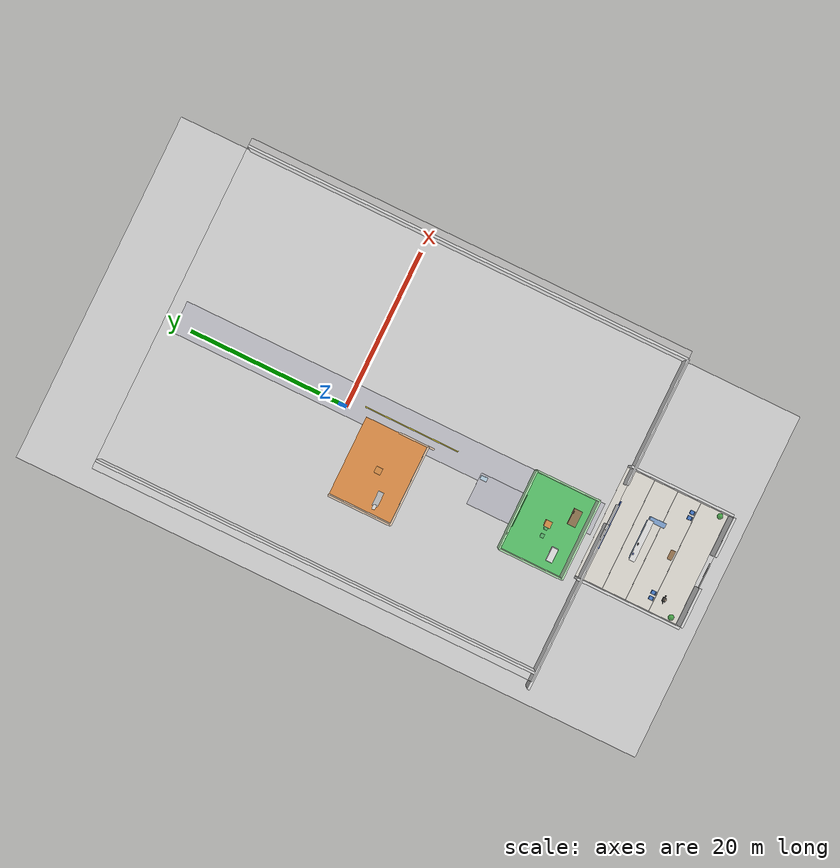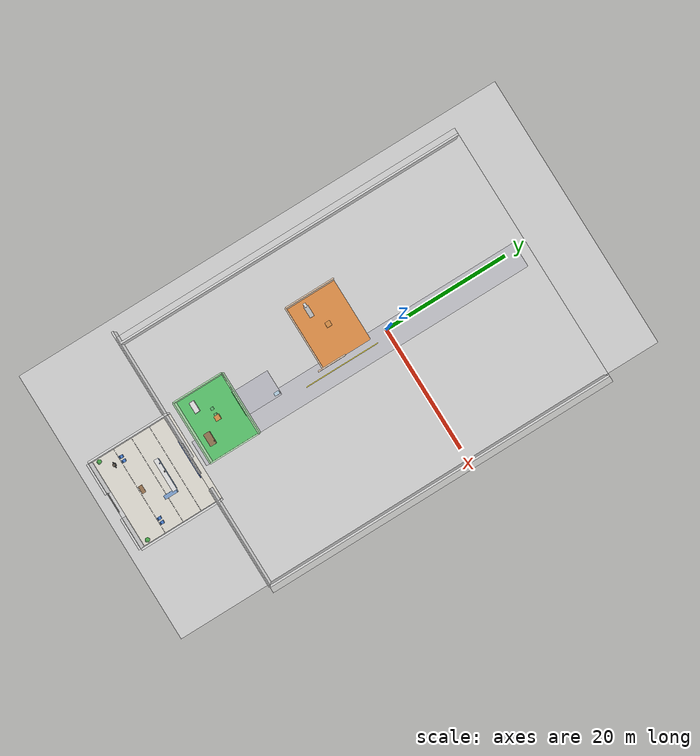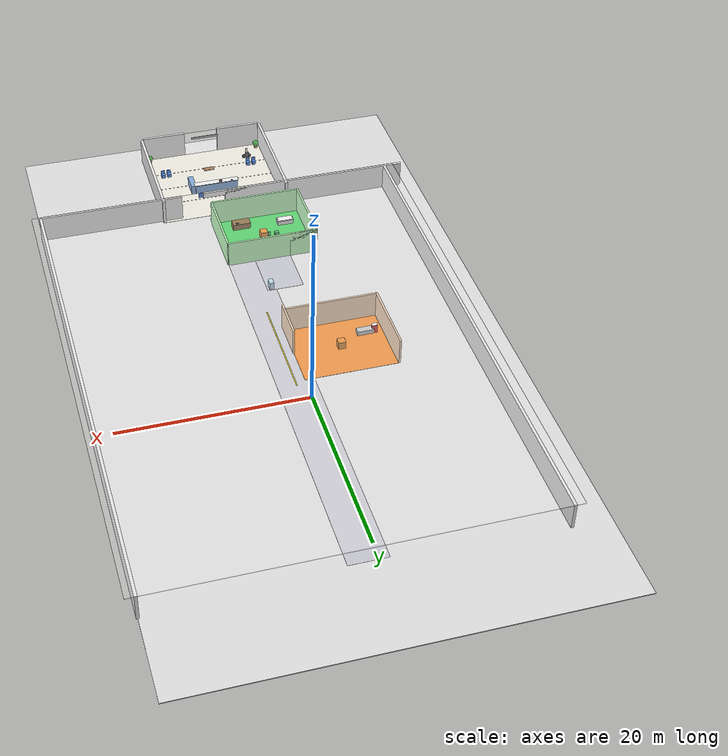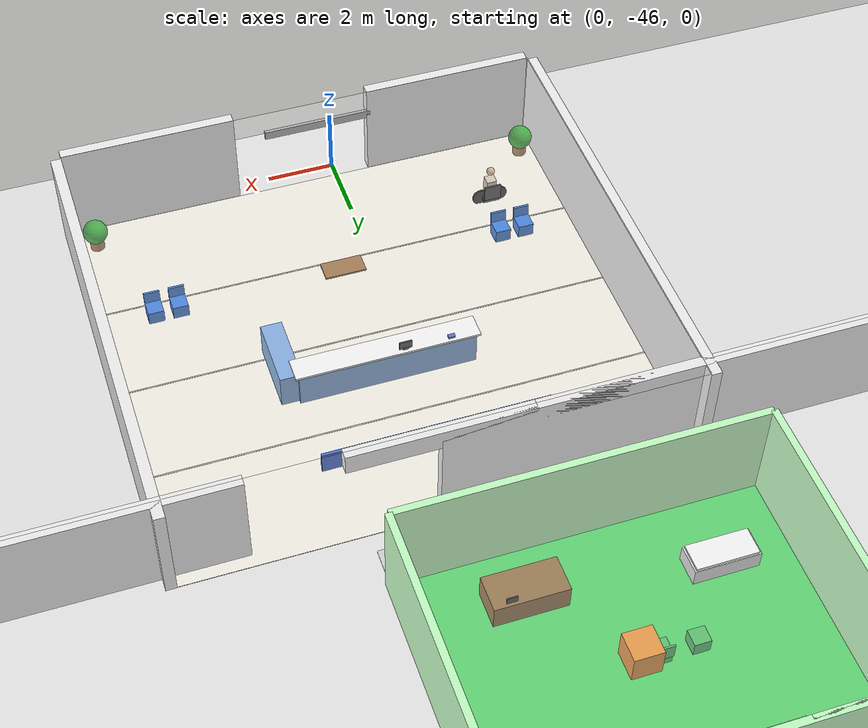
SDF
<sdf version="1.6">
 <world name="hospital">
  <model name="hospital_floor">
   <static>true</static>
   <pose>0 -8 0 0 0 0</pose>
   <link name="floor_link">
    <collision name="col"><geometry><box><size>44 80 0.1</size></box></geometry></collision>
    <visual name="vis">
     <geometry><box><size>44 80 0.1</size></box></geometry>
     <material><ambient>0.88 0.88 0.88 1</ambient><diffuse>0.88 0.88 0.88 1</diffuse></material>
    </visual>
   </link>
  </model>
  <model name="wall_south_west">
   <static>true</static>
   <pose>-9.5 -33 1.5 0 0 0</pose>
   <link name="link">
    <collision name="col"><geometry><box><size>21 0.3 3.0</size></box></geometry></collision>
    <visual name="vis">
     <geometry><box><size>21 0.3 3.0</size></box></geometry>
     <material><ambient>0.92 0.92 0.92 1</ambient><diffuse>0.92 0.92 0.92 1</diffuse></material>
    </visual>
   </link>
  </model>
  <model name="wall_south_east">
   <static>true</static>
   <pose>14.0 -33 1.5 0 0 0</pose>
   <link name="link">
    <collision name="col"><geometry><box><size>16 0.3 3.0</size></box></geometry></collision>
    <visual name="vis">
     <geometry><box><size>16 0.3 3.0</size></box></geometry>
     <material><ambient>0.92 0.92 0.92 1</ambient><diffuse>0.92 0.92 0.92 1</diffuse></material>
    </visual>
   </link>
  </model>
  <model name="wall_south_linteau">
   <static>true</static>
   <pose>1.0 -33 2.7 0 0 0</pose>
   <link name="link">
    <visual name="vis">
     <geometry><box><size>5 0.3 0.6</size></box></geometry>
     <material><ambient>0.92 0.92 0.92 1</ambient><diffuse>0.92 0.92 0.92 1</diffuse></material>
    </visual>
   </link>
  </model>
  <model name="wall_east">
   <static>true</static>
   <pose>22 -5 1.5 0 0 0</pose>
   <link name="link">
    <collision name="col"><geometry><box><size>0.3 56 3.0</size></box></geometry></collision>
    <visual name="vis">
     <geometry><box><size>0.3 56 3.0</size></box></geometry>
     <material><ambient>0.92 0.92 0.92 1</ambient><diffuse>0.92 0.92 0.92 1</diffuse></material>
    </visual>
   </link>
  </model>
  <model name="wall_west">
   <static>true</static>
   <pose>-18 -5 1.5 0 0 0</pose>
   <link name="link">
    <collision name="col"><geometry><box><size>0.3 56 3.0</size></box></geometry></collision>
    <visual name="vis">
     <geometry><box><size>0.3 56 3.0</size></box></geometry>
     <material><ambient>0.92 0.92 0.92 1</ambient><diffuse>0.92 0.92 0.92 1</diffuse></material>
    </visual>
   </link>
  </model>
  <model name="entrance_floor">
   <static>true</static>
   <pose>1.0 -39.0 0.07 0 0 0</pose>
   <link name="link">
    <collision name="col"><geometry><box><size>14 13 0.02</size></box></geometry></collision>
    <visual name="vis">
     <geometry><box><size>14 13 0.02</size></box></geometry>
     <material><ambient>0.95 0.93 0.88 1</ambient><diffuse>0.95 0.93 0.88 1</diffuse></material>
    </visual>
   </link>
  </model>
  <model name="entrance_tile_h1">
   <static>true</static>
   <pose>1.0 -36 0.08 0 0 0</pose>
   <link name="link">
    <visual name="vis">
     <geometry><box><size>14 0.04 0.01</size></box></geometry>
     <material><ambient>0.7 0.7 0.7 1</ambient><diffuse>0.7 0.7 0.7 1</diffuse></material>
    </visual>
   </link>
  </model>
  <model name="entrance_tile_h2">
   <static>true</static>
   <pose>1.0 -39 0.08 0 0 0</pose>
   <link name="link">
    <visual name="vis">
     <geometry><box><size>14 0.04 0.01</size></box></geometry>
     <material><ambient>0.7 0.7 0.7 1</ambient><diffuse>0.7 0.7 0.7 1</diffuse></material>
    </visual>
   </link>
  </model>
  <model name="entrance_tile_h3">
   <static>true</static>
   <pose>1.0 -42 0.08 0 0 0</pose>
   <link name="link">
    <visual name="vis">
     <geometry><box><size>14 0.04 0.01</size></box></geometry>
     <material><ambient>0.7 0.7 0.7 1</ambient><diffuse>0.7 0.7 0.7 1</diffuse></material>
    </visual>
   </link>
  </model>
  <model name="entrance_wall_east">
   <static>true</static>
   <pose>8.15 -39 1.5 0 0 0</pose>
   <link name="link">
    <collision name="col"><geometry><box><size>0.3 13 3.0</size></box></geometry></collision>
    <visual name="vis">
     <geometry><box><size>0.3 13 3.0</size></box></geometry>
     <material><ambient>0.92 0.92 0.92 1</ambient><diffuse>0.92 0.92 0.92 1</diffuse></material>
    </visual>
   </link>
  </model>
  <model name="entrance_wall_west">
   <static>true</static>
   <pose>-6.15 -39 1.5 0 0 0</pose>
   <link name="link">
    <collision name="col"><geometry><box><size>0.3 13 3.0</size></box></geometry></collision>
    <visual name="vis">
     <geometry><box><size>0.3 13 3.0</size></box></geometry>
     <material><ambient>0.92 0.92 0.92 1</ambient><diffuse>0.92 0.92 0.92 1</diffuse></material>
    </visual>
   </link>
  </model>
  <model name="entrance_wall_south_left">
   <static>true</static>
   <pose>-3.5 -45.7 1.5 0 0 0</pose>
   <link name="link">
    <collision name="col"><geometry><box><size>5 0.3 3.0</size></box></geometry></collision>
    <visual name="vis">
     <geometry><box><size>5 0.3 3.0</size></box></geometry>
     <material><ambient>0.92 0.92 0.92 1</ambient><diffuse>0.92 0.92 0.92 1</diffuse></material>
    </visual>
   </link>
  </model>
  <model name="entrance_wall_south_right">
   <static>true</static>
   <pose>5.5 -45.7 1.5 0 0 0</pose>
   <link name="link">
    <collision name="col"><geometry><box><size>5 0.3 3.0</size></box></geometry></collision>
    <visual name="vis">
     <geometry><box><size>5 0.3 3.0</size></box></geometry>
     <material><ambient>0.92 0.92 0.92 1</ambient><diffuse>0.92 0.92 0.92 1</diffuse></material>
    </visual>
   </link>
  </model>
  <model name="door_left">
   <static>true</static>
   <pose>-0.7 -45.6 1.0 0 0 0</pose>
   <link name="link">
    <visual name="vis">
     <geometry><box><size>1.1 0.06 2.0</size></box></geometry>
     <material><ambient>0.5 0.7 1.0 0.4</ambient><diffuse>0.5 0.7 1.0 0.4</diffuse></material>
    </visual>
   </link>
  </model>
  <model name="door_right">
   <static>true</static>
   <pose>1.7 -45.6 1.0 0 0 0</pose>
   <link name="link">
    <visual name="vis">
     <geometry><box><size>1.1 0.06 2.0</size></box></geometry>
     <material><ambient>0.5 0.7 1.0 0.4</ambient><diffuse>0.5 0.7 1.0 0.4</diffuse></material>
    </visual>
   </link>
  </model>
  <model name="door_frame_top">
   <static>true</static>
   <pose>0.5 -45.6 2.15 0 0 0</pose>
   <link name="link">
    <visual name="vis">
     <geometry><box><size>3.2 0.1 0.25</size></box></geometry>
     <material><ambient>0.6 0.6 0.6 1</ambient><diffuse>0.6 0.6 0.6 1</diffuse></material>
    </visual>
   </link>
  </model>
  <model name="reception_desk_front">
   <static>true</static>
   <pose>1.0 -37.5 0.55 0 0 0</pose>
   <link name="link">
    <collision name="col"><geometry><box><size>5.0 0.6 1.1</size></box></geometry></collision>
    <visual name="vis">
     <geometry><box><size>5.0 0.6 1.1</size></box></geometry>
     <material><ambient>0.4 0.6 0.85 1</ambient><diffuse>0.4 0.6 0.85 1</diffuse></material>
    </visual>
   </link>
  </model>
  <model name="reception_desk_right">
   <static>true</static>
   <pose>3.7 -38.3 0.55 0 0 0</pose>
   <link name="link">
    <collision name="col"><geometry><box><size>0.6 2.0 1.1</size></box></geometry></collision>
    <visual name="vis">
     <geometry><box><size>0.6 2.0 1.1</size></box></geometry>
     <material><ambient>0.4 0.6 0.85 1</ambient><diffuse>0.4 0.6 0.85 1</diffuse></material>
    </visual>
   </link>
  </model>
  <model name="reception_top">
   <static>true</static>
   <pose>1.0 -37.5 1.12 0 0 0</pose>
   <link name="link">
    <visual name="vis">
     <geometry><box><size>5.2 0.7 0.06</size></box></geometry>
     <material><ambient>0.97 0.97 0.97 1</ambient><diffuse>0.97 0.97 0.97 1</diffuse></material>
    </visual>
   </link>
  </model>
  <model name="reception_pc_screen">
   <static>true</static>
   <pose>0.5 -37.3 1.28 0 0 0</pose>
   <link name="link">
    <visual name="vis">
     <geometry><box><size>0.35 0.04 0.25</size></box></geometry>
     <material><ambient>0.15 0.15 0.15 1</ambient><diffuse>0.15 0.15 0.15 1</diffuse></material>
    </visual>
   </link>
  </model>
  <model name="reception_pc_base">
   <static>true</static>
   <pose>0.5 -37.32 1.17 0 0 0</pose>
   <link name="link">
    <visual name="vis">
     <geometry><box><size>0.15 0.15 0.1</size></box></geometry>
     <material><ambient>0.2 0.2 0.2 1</ambient><diffuse>0.2 0.2 0.2 1</diffuse></material>
    </visual>
   </link>
  </model>
  <model name="reception_phone">
   <static>true</static>
   <pose>-0.8 -37.3 1.18 0 0 0</pose>
   <link name="link">
    <visual name="vis">
     <geometry><box><size>0.2 0.12 0.05</size></box></geometry>
     <material><ambient>0.2 0.3 0.7 1</ambient><diffuse>0.2 0.3 0.7 1</diffuse></material>
    </visual>
   </link>
  </model>
  <model name="sign_hospital_main">
   <static>true</static>
   <pose>1.0 -33.2 2.6 0 0 0</pose>
   <link name="link">
    <visual name="vis">
     <geometry><box><size>6.0 0.08 0.6</size></box></geometry>
     <material><ambient>0.1 0.3 0.8 1</ambient><diffuse>0.1 0.3 0.8 1</diffuse></material>
    </visual>
   </link>
  </model>
  <model name="sign_red_cross_h">
   <static>true</static>
   <pose>1.0 -33.13 2.6 0 0 0</pose>
   <link name="link">
    <visual name="vis">
     <geometry><box><size>0.4 0.06 0.12</size></box></geometry>
     <material><ambient>1 0 0 1</ambient><diffuse>1 0 0 1</diffuse></material>
    </visual>
   </link>
  </model>
  <model name="sign_red_cross_v">
   <static>true</static>
   <pose>1.0 -33.13 2.6 0 0 0</pose>
   <link name="link">
    <visual name="vis">
     <geometry><box><size>0.12 0.06 0.4</size></box></geometry>
     <material><ambient>1 0 0 1</ambient><diffuse>1 0 0 1</diffuse></material>
    </visual>
   </link>
  </model>
  <model name="waiting_chair_1">
   <static>true</static>
   <pose>-4.5 -41.5 0.25 0 0 0</pose>
   <link name="link">
    <collision name="col"><geometry><box><size>0.45 0.45 0.45</size></box></geometry></collision>
    <visual name="vis">
     <geometry><box><size>0.45 0.45 0.45</size></box></geometry>
     <material><ambient>0.1 0.4 0.85 1</ambient><diffuse>0.1 0.4 0.85 1</diffuse></material>
    </visual>
   </link>
  </model>
  <model name="waiting_chair_back_1">
   <static>true</static>
   <pose>-4.5 -41.75 0.6 0 0 0</pose>
   <link name="link">
    <visual name="vis">
     <geometry><box><size>0.45 0.06 0.45</size></box></geometry>
     <material><ambient>0.1 0.4 0.85 1</ambient><diffuse>0.1 0.4 0.85 1</diffuse></material>
    </visual>
   </link>
  </model>
  <model name="waiting_chair_2">
   <static>true</static>
   <pose>-3.8 -41.5 0.25 0 0 0</pose>
   <link name="link">
    <collision name="col"><geometry><box><size>0.45 0.45 0.45</size></box></geometry></collision>
    <visual name="vis">
     <geometry><box><size>0.45 0.45 0.45</size></box></geometry>
     <material><ambient>0.1 0.4 0.85 1</ambient><diffuse>0.1 0.4 0.85 1</diffuse></material>
    </visual>
   </link>
  </model>
  <model name="waiting_chair_back_2">
   <static>true</static>
   <pose>-3.8 -41.75 0.6 0 0 0</pose>
   <link name="link">
    <visual name="vis">
     <geometry><box><size>0.45 0.06 0.45</size></box></geometry>
     <material><ambient>0.1 0.4 0.85 1</ambient><diffuse>0.1 0.4 0.85 1</diffuse></material>
    </visual>
   </link>
  </model>
  <model name="waiting_chair_3">
   <static>true</static>
   <pose>5.8 -41.5 0.25 0 0 0</pose>
   <link name="link">
    <collision name="col"><geometry><box><size>0.45 0.45 0.45</size></box></geometry></collision>
    <visual name="vis">
     <geometry><box><size>0.45 0.45 0.45</size></box></geometry>
     <material><ambient>0.1 0.4 0.85 1</ambient><diffuse>0.1 0.4 0.85 1</diffuse></material>
    </visual>
   </link>
  </model>
  <model name="waiting_chair_back_3">
   <static>true</static>
   <pose>5.8 -41.75 0.6 0 0 0</pose>
   <link name="link">
    <visual name="vis">
     <geometry><box><size>0.45 0.06 0.45</size></box></geometry>
     <material><ambient>0.1 0.4 0.85 1</ambient><diffuse>0.1 0.4 0.85 1</diffuse></material>
    </visual>
   </link>
  </model>
  <model name="waiting_chair_4">
   <static>true</static>
   <pose>6.5 -41.5 0.25 0 0 0</pose>
   <link name="link">
    <collision name="col"><geometry><box><size>0.45 0.45 0.45</size></box></geometry></collision>
    <visual name="vis">
     <geometry><box><size>0.45 0.45 0.45</size></box></geometry>
     <material><ambient>0.1 0.4 0.85 1</ambient><diffuse>0.1 0.4 0.85 1</diffuse></material>
    </visual>
   </link>
  </model>
  <model name="waiting_chair_back_4">
   <static>true</static>
   <pose>6.5 -41.75 0.6 0 0 0</pose>
   <link name="link">
    <visual name="vis">
     <geometry><box><size>0.45 0.06 0.45</size></box></geometry>
     <material><ambient>0.1 0.4 0.85 1</ambient><diffuse>0.1 0.4 0.85 1</diffuse></material>
    </visual>
   </link>
  </model>
  <model name="waiting_table">
   <static>true</static>
   <pose>1.0 -41.5 0.3 0 0 0</pose>
   <link name="link">
    <collision name="col"><geometry><box><size>1.2 0.6 0.05</size></box></geometry></collision>
    <visual name="vis">
     <geometry><box><size>1.2 0.6 0.05</size></box></geometry>
     <material><ambient>0.55 0.35 0.15 1</ambient><diffuse>0.55 0.35 0.15 1</diffuse></material>
    </visual>
   </link>
  </model>
  <model name="plant_entrance_left">
   <static>true</static>
   <pose>-5.5 -44.5 0.5 0 0 0</pose>
   <link name="link">
    <collision name="col">
     <geometry><cylinder><radius>0.2</radius><length>1.0</length></cylinder></geometry>
    </collision>
    <visual name="pot">
     <geometry><cylinder><radius>0.2</radius><length>0.4</length></cylinder></geometry>
     <material><ambient>0.6 0.4 0.2 1</ambient><diffuse>0.6 0.4 0.2 1</diffuse></material>
    </visual>
    <visual name="foliage">
     <pose>0 0 0.4 0 0 0</pose>
     <geometry><sphere><radius>0.35</radius></sphere></geometry>
     <material><ambient>0.1 0.6 0.1 1</ambient><diffuse>0.1 0.6 0.1 1</diffuse></material>
    </visual>
   </link>
  </model>
  <model name="plant_entrance_right">
   <static>true</static>
   <pose>7.5 -44.5 0.5 0 0 0</pose>
   <link name="link">
    <collision name="col">
     <geometry><cylinder><radius>0.2</radius><length>1.0</length></cylinder></geometry>
    </collision>
    <visual name="pot">
     <geometry><cylinder><radius>0.2</radius><length>0.4</length></cylinder></geometry>
     <material><ambient>0.6 0.4 0.2 1</ambient><diffuse>0.6 0.4 0.2 1</diffuse></material>
    </visual>
    <visual name="foliage">
     <pose>0 0 0.4 0 0 0</pose>
     <geometry><sphere><radius>0.35</radius></sphere></geometry>
     <material><ambient>0.1 0.6 0.1 1</ambient><diffuse>0.1 0.6 0.1 1</diffuse></material>
    </visual>
   </link>
  </model>
  <model name="wheelchair_entrance">
   <static>true</static>
   <pose>-4.0 -43.0 0.3 0 0 0</pose>
   <link name="link">
    <collision name="col"><geometry><box><size>0.6 0.8 0.6</size></box></geometry></collision>
    <visual name="seat">
     <geometry><box><size>0.5 0.45 0.1</size></box></geometry>
     <material><ambient>0.2 0.2 0.2 1</ambient><diffuse>0.2 0.2 0.2 1</diffuse></material>
    </visual>
    <visual name="back">
     <pose>0 0.22 0.3 0 0 0</pose>
     <geometry><box><size>0.5 0.05 0.5</size></box></geometry>
     <material><ambient>0.2 0.2 0.2 1</ambient><diffuse>0.2 0.2 0.2 1</diffuse></material>
    </visual>
    <visual name="wheel_l">
     <pose>-0.28 0 0 1.5708 0 0</pose>
     <geometry><cylinder><radius>0.25</radius><length>0.05</length></cylinder></geometry>
     <material><ambient>0.1 0.1 0.1 1</ambient><diffuse>0.1 0.1 0.1 1</diffuse></material>
    </visual>
    <visual name="wheel_r">
     <pose>0.28 0 0 1.5708 0 0</pose>
     <geometry><cylinder><radius>0.25</radius><length>0.05</length></cylinder></geometry>
     <material><ambient>0.1 0.1 0.1 1</ambient><diffuse>0.1 0.1 0.1 1</diffuse></material>
    </visual>
   </link>
  </model>
  <model name="patient_wheelchair_body">
   <static>true</static>
   <pose>-4.0 -43.0 0.7 0 0 0</pose>
   <link name="link">
    <visual name="vis">
     <geometry><box><size>0.3 0.3 0.5</size></box></geometry>
     <material><ambient>0.8 0.75 0.65 1</ambient><diffuse>0.8 0.75 0.65 1</diffuse></material>
    </visual>
   </link>
  </model>
  <model name="patient_wheelchair_head">
   <static>true</static>
   <pose>-4.0 -43.0 1.25 0 0 0</pose>
   <link name="link">
    <visual name="vis">
     <geometry><sphere><radius>0.12</radius></sphere></geometry>
     <material><ambient>0.8 0.65 0.5 1</ambient><diffuse>0.8 0.65 0.5 1</diffuse></material>
    </visual>
   </link>
  </model>
  <model name="corridor_floor">
   <static>true</static>
   <pose>1 -5 0.05 0 0 0</pose>
   <link name="link">
    <visual name="vis">
     <geometry><box><size>4 54 0.02</size></box></geometry>
     <material><ambient>0.78 0.78 0.82 1</ambient><diffuse>0.78 0.78 0.82 1</diffuse></material>
    </visual>
   </link>
  </model>
  <model name="guide_line_2">
   <static>true</static>
   <pose>1.0 -8.0 0.06 0 0 0</pose>
   <link name="link">
    <visual name="vis">
     <geometry><box><size>0.12 12 0.01</size></box></geometry>
     <material><ambient>1.0 0.9 0.0 1</ambient><diffuse>1.0 0.9 0.0 1</diffuse></material>
    </visual>
   </link>
  </model>
  <model name="med_cart_corridor_2">
   <static>true</static>
   <pose>-0.5 -18.0 0.45 0 0 0</pose>
   <link name="link">
    <collision name="col"><geometry><box><size>0.5 0.8 0.9</size></box></geometry></collision>
    <visual name="body">
     <geometry><box><size>0.5 0.8 0.9</size></box></geometry>
     <material><ambient>0.7 0.85 0.95 1</ambient><diffuse>0.7 0.85 0.95 1</diffuse></material>
    </visual>
   </link>
  </model>
  <model name="emergency_floor">
   <static>true</static>
   <pose>-5.0 -6.6 0.06 0 0 0</pose>
   <link name="link">
    <visual name="vis">
     <geometry><box><size>10 8 0.02</size></box></geometry>
     <material><ambient>0.95 0.5 0.1 1</ambient><diffuse>0.95 0.5 0.1 1</diffuse></material>
    </visual>
   </link>
  </model>
  <model name="emergency_wall_south">
   <static>true</static>
   <pose>-5.0 -10.6 1.5 0 0 0</pose>
   <link name="link">
    <collision name="col"><geometry><box><size>10 0.2 3.0</size></box></geometry></collision>
    <visual name="vis">
     <geometry><box><size>10 0.2 3.0</size></box></geometry>
     <material><ambient>1.0 0.85 0.7 1</ambient><diffuse>1.0 0.85 0.7 1</diffuse></material>
    </visual>
   </link>
  </model>
  <model name="emergency_wall_west">
   <static>true</static>
   <pose>-10.0 -6.6 1.5 0 0 0</pose>
   <link name="link">
    <collision name="col"><geometry><box><size>0.2 8 3.0</size></box></geometry></collision>
    <visual name="vis">
     <geometry><box><size>0.2 8 3.0</size></box></geometry>
     <material><ambient>1.0 0.85 0.7 1</ambient><diffuse>1.0 0.85 0.7 1</diffuse></material>
    </visual>
   </link>
  </model>
  <model name="emergency_wall_east_bottom">
   <static>true</static>
   <pose>0.0 -9.1 1.5 0 0 0</pose>
   <link name="link">
    <collision name="col"><geometry><box><size>0.2 4.5 3.0</size></box></geometry></collision>
    <visual name="vis">
     <geometry><box><size>0.2 4.5 3.0</size></box></geometry>
     <material><ambient>1.0 0.85 0.7 1</ambient><diffuse>1.0 0.85 0.7 1</diffuse></material>
    </visual>
   </link>
  </model>
  <model name="corridor_emergency">
   <static>true</static>
   <pose>-2.5 -6.6 0.055 0 0 0</pose>
   <link name="link">
    <visual name="vis">
     <geometry><box><size>3 4 0.02</size></box></geometry>
     <material><ambient>0.75 0.75 0.8 1</ambient><diffuse>0.75 0.75 0.8 1</diffuse></material>
    </visual>
   </link>
  </model>
  <model name="crash_cart">
   <static>true</static>
   <pose>-9.0 -8.0 0.5 0 0 0</pose>
   <link name="link">
    <collision name="col"><geometry><box><size>0.6 0.4 1.0</size></box></geometry></collision>
    <visual name="body">
     <geometry><box><size>0.6 0.4 1.0</size></box></geometry>
     <material><ambient>0.9 0.1 0.1 1</ambient><diffuse>0.9 0.1 0.1 1</diffuse></material>
    </visual>
    <visual name="top">
     <pose>0 0 0.52 0 0 0</pose>
     <geometry><box><size>0.6 0.4 0.04</size></box></geometry>
     <material><ambient>0.95 0.95 0.95 1</ambient><diffuse>0.95 0.95 0.95 1</diffuse></material>
    </visual>
    <visual name="drawer1">
     <pose>0 -0.21 0.2 0 0 0</pose>
     <geometry><box><size>0.5 0.02 0.15</size></box></geometry>
     <material><ambient>0.7 0.1 0.1 1</ambient><diffuse>0.7 0.1 0.1 1</diffuse></material>
    </visual>
   </link>
  </model>
  <model name="emergency_gurney_2">
   <static>true</static>
   <pose>-8.0 -8.0 0.4 0 0 0</pose>
   <link name="link">
    <collision name="col"><geometry><box><size>1.8 0.7 0.5</size></box></geometry></collision>
    <visual name="frame">
     <geometry><box><size>1.8 0.7 0.5</size></box></geometry>
     <material><ambient>0.75 0.75 0.75 1</ambient><diffuse>0.75 0.75 0.75 1</diffuse></material>
    </visual>
   </link>
  </model>
  <model name="delivery_table_emergency">
   <static>true</static>
   <pose>-5.0 -6.6 0.45 0 0 0</pose>
   <link name="link">
    <collision name="col"><geometry><box><size>0.8 0.8 0.9</size></box></geometry></collision>
    <visual name="vis">
     <geometry><box><size>0.8 0.8 0.9</size></box></geometry>
     <material><ambient>0.9 0.5 0.1 1</ambient><diffuse>0.9 0.5 0.1 1</diffuse></material>
    </visual>
   </link>
  </model>
  <model name="consultation_floor">
   <static>true</static>
   <pose>-2.0 -27.0 0.06 0 0 0</pose>
   <link name="link">
    <visual name="vis">
     <geometry><box><size>10 8 0.02</size></box></geometry>
     <material><ambient>0.2 0.8 0.3 1</ambient><diffuse>0.2 0.8 0.3 1</diffuse></material>
    </visual>
   </link>
  </model>
  <model name="consultation_wall_north">
   <static>true</static>
   <pose>-2.0 -23.0 1.5 0 0 0</pose>
   <link name="link">
    <collision name="col"><geometry><box><size>10 0.2 3.0</size></box></geometry></collision>
    <visual name="vis">
     <geometry><box><size>10 0.2 3.0</size></box></geometry>
     <material><ambient>0.7 1.0 0.7 1</ambient><diffuse>0.7 1.0 0.7 1</diffuse></material>
    </visual>
   </link>
  </model>
  <model name="consultation_wall_south">
   <static>true</static>
   <pose>-2.0 -31.0 1.5 0 0 0</pose>
   <link name="link">
    <collision name="col"><geometry><box><size>10 0.2 3.0</size></box></geometry></collision>
    <visual name="vis">
     <geometry><box><size>10 0.2 3.0</size></box></geometry>
     <material><ambient>0.7 1.0 0.7 1</ambient><diffuse>0.7 1.0 0.7 1</diffuse></material>
    </visual>
   </link>
  </model>
  <model name="consultation_wall_east">
   <static>true</static>
   <pose>3.0 -27.0 1.5 0 0 0</pose>
   <link name="link">
    <collision name="col"><geometry><box><size>0.2 8 3.0</size></box></geometry></collision>
    <visual name="vis">
     <geometry><box><size>0.2 8 3.0</size></box></geometry>
     <material><ambient>0.7 1.0 0.7 1</ambient><diffuse>0.7 1.0 0.7 1</diffuse></material>
    </visual>
   </link>
  </model>
  <model name="consultation_wall_west">
   <static>true</static>
   <pose>-7.0 -27.0 1.5 0 0 0</pose>
   <link name="link">
    <collision name="col"><geometry><box><size>0.2 8 3.0</size></box></geometry></collision>
    <visual name="vis">
     <geometry><box><size>0.2 8 3.0</size></box></geometry>
     <material><ambient>0.7 1.0 0.7 1</ambient><diffuse>0.7 1.0 0.7 1</diffuse></material>
    </visual>
   </link>
  </model>
  <model name="consultation_wall_north_west">
   <static>true</static>
   <pose>-5.5 -23.0 1.5 0 0 0</pose>
   <link name="link">
    <collision name="col"><geometry><box><size>3 0.2 3.0</size></box></geometry></collision>
    <visual name="vis">
     <geometry><box><size>3 0.2 3.0</size></box></geometry>
     <material><ambient>0.7 1.0 0.7 1</ambient><diffuse>0.7 1.0 0.7 1</diffuse></material>
    </visual>
   </link>
  </model>
  <model name="corridor_consultation">
   <static>true</static>
   <pose>-2.0 -20.5 0.055 0 0 0</pose>
   <link name="link">
    <visual name="vis">
     <geometry><box><size>4 6 0.02</size></box></geometry>
     <material><ambient>0.75 0.75 0.8 1</ambient><diffuse>0.75 0.75 0.8 1</diffuse></material>
    </visual>
   </link>
  </model>
  <model name="consultation_desk">
   <static>true</static>
   <pose>0 -29.5 0.4 0 0 0</pose>
   <link name="link">
    <collision name="col"><geometry><box><size>2.0 1.0 0.75</size></box></geometry></collision>
    <visual name="vis">
     <geometry><box><size>2.0 1.0 0.75</size></box></geometry>
     <material><ambient>0.5 0.35 0.15 1</ambient><diffuse>0.5 0.35 0.15 1</diffuse></material>
    </visual>
   </link>
  </model>
  <model name="consultation_pc">
   <static>true</static>
   <pose>0.5 -29.1 0.86 0 0 0</pose>
   <link name="link">
    <visual name="vis">
     <geometry><box><size>0.3 0.03 0.22</size></box></geometry>
     <material><ambient>0.15 0.15 0.15 1</ambient><diffuse>0.15 0.15 0.15 1</diffuse></material>
    </visual>
   </link>
  </model>
  <model name="consult_chair_1">
   <static>true</static>
   <pose>-2.5 -27.0 0.25 0 0 0</pose>
   <link name="link">
    <collision name="col"><geometry><box><size>0.45 0.45 0.45</size></box></geometry></collision>
    <visual name="vis">
     <geometry><box><size>0.45 0.45 0.45</size></box></geometry>
     <material><ambient>0.2 0.7 0.3 1</ambient><diffuse>0.2 0.7 0.3 1</diffuse></material>
    </visual>
   </link>
  </model>
  <model name="consult_chair_1_back">
   <static>true</static>
   <pose>-2.5 -26.75 0.6 0 0 0</pose>
   <link name="link">
    <visual name="vis">
     <geometry><box><size>0.45 0.05 0.45</size></box></geometry>
     <material><ambient>0.2 0.7 0.3 1</ambient><diffuse>0.2 0.7 0.3 1</diffuse></material>
    </visual>
   </link>
  </model>
  <model name="consult_chair_2">
   <static>true</static>
   <pose>-3.5 -27.0 0.25 0 0 0</pose>
   <link name="link">
    <collision name="col"><geometry><box><size>0.45 0.45 0.45</size></box></geometry></collision>
    <visual name="vis">
     <geometry><box><size>0.45 0.45 0.45</size></box></geometry>
     <material><ambient>0.2 0.7 0.3 1</ambient><diffuse>0.2 0.7 0.3 1</diffuse></material>
    </visual>
   </link>
  </model>
  <model name="delivery_table_consultation">
   <static>true</static>
   <pose>-2.0 -27.0 0.45 0 0 0</pose>
   <link name="link">
    <collision name="col"><geometry><box><size>0.8 0.8 0.9</size></box></geometry></collision>
    <visual name="vis">
     <geometry><box><size>0.8 0.8 0.9</size></box></geometry>
     <material><ambient>0.9 0.5 0.1 1</ambient><diffuse>0.9 0.5 0.1 1</diffuse></material>
    </visual>
   </link>
  </model>
  <model name="sign_consultation">
   <static>true</static>
   <pose>-2.0 -23.2 2.5 0 0 0</pose>
   <link name="link">
    <visual name="vis">
     <geometry><box><size>4.0 0.05 0.5</size></box></geometry>
     <material><ambient>0.1 0.7 0.2 1</ambient><diffuse>0.1 0.7 0.2 1</diffuse></material>
    </visual>
   </link>
  </model>
  <model name="consult_bed">
   <static>true</static>
   <pose>-5.0 -29.0 0.35 0 0 0</pose>
   <link name="link">
    <collision name="col"><geometry><box><size>1.8 0.8 0.5</size></box></geometry></collision>
    <visual name="frame">
     <geometry><box><size>1.8 0.8 0.5</size></box></geometry>
     <material><ambient>0.85 0.85 0.85 1</ambient><diffuse>0.85 0.85 0.85 1</diffuse></material>
    </visual>
    <visual name="mattress">
     <pose>0 0 0.28 0 0 0</pose>
     <geometry><box><size>1.7 0.75 0.08</size></box></geometry>
     <material><ambient>0.97 0.97 0.97 1</ambient><diffuse>0.97 0.97 0.97 1</diffuse></material>
    </visual>
   </link>
  </model>
  <model name="hospital_ceiling">
   <static>true</static>
   <pose>2 -5 3.0 0 0 0</pose>
   <link name="link">
    <visual name="vis">
     <geometry><box><size>42 56 0.1</size></box></geometry>
     <material><ambient>0.95 0.95 0.95 0.25</ambient><diffuse>0.95 0.95 0.95 0.25</diffuse></material>
    </visual>
   </link>
  </model>
  <model name="entrance_ceiling">
   <static>true</static>
   <pose>1.0 -39.0 3.0 0 0 0</pose>
   <link name="link">
    <visual name="vis">
     <geometry><box><size>14 13 0.1</size></box></geometry>
     <material><ambient>0.95 0.95 0.95 0.25</ambient><diffuse>0.95 0.95 0.95 0.25</diffuse></material>
    </visual>
   </link>
  </model>
 </world>
</sdf>
